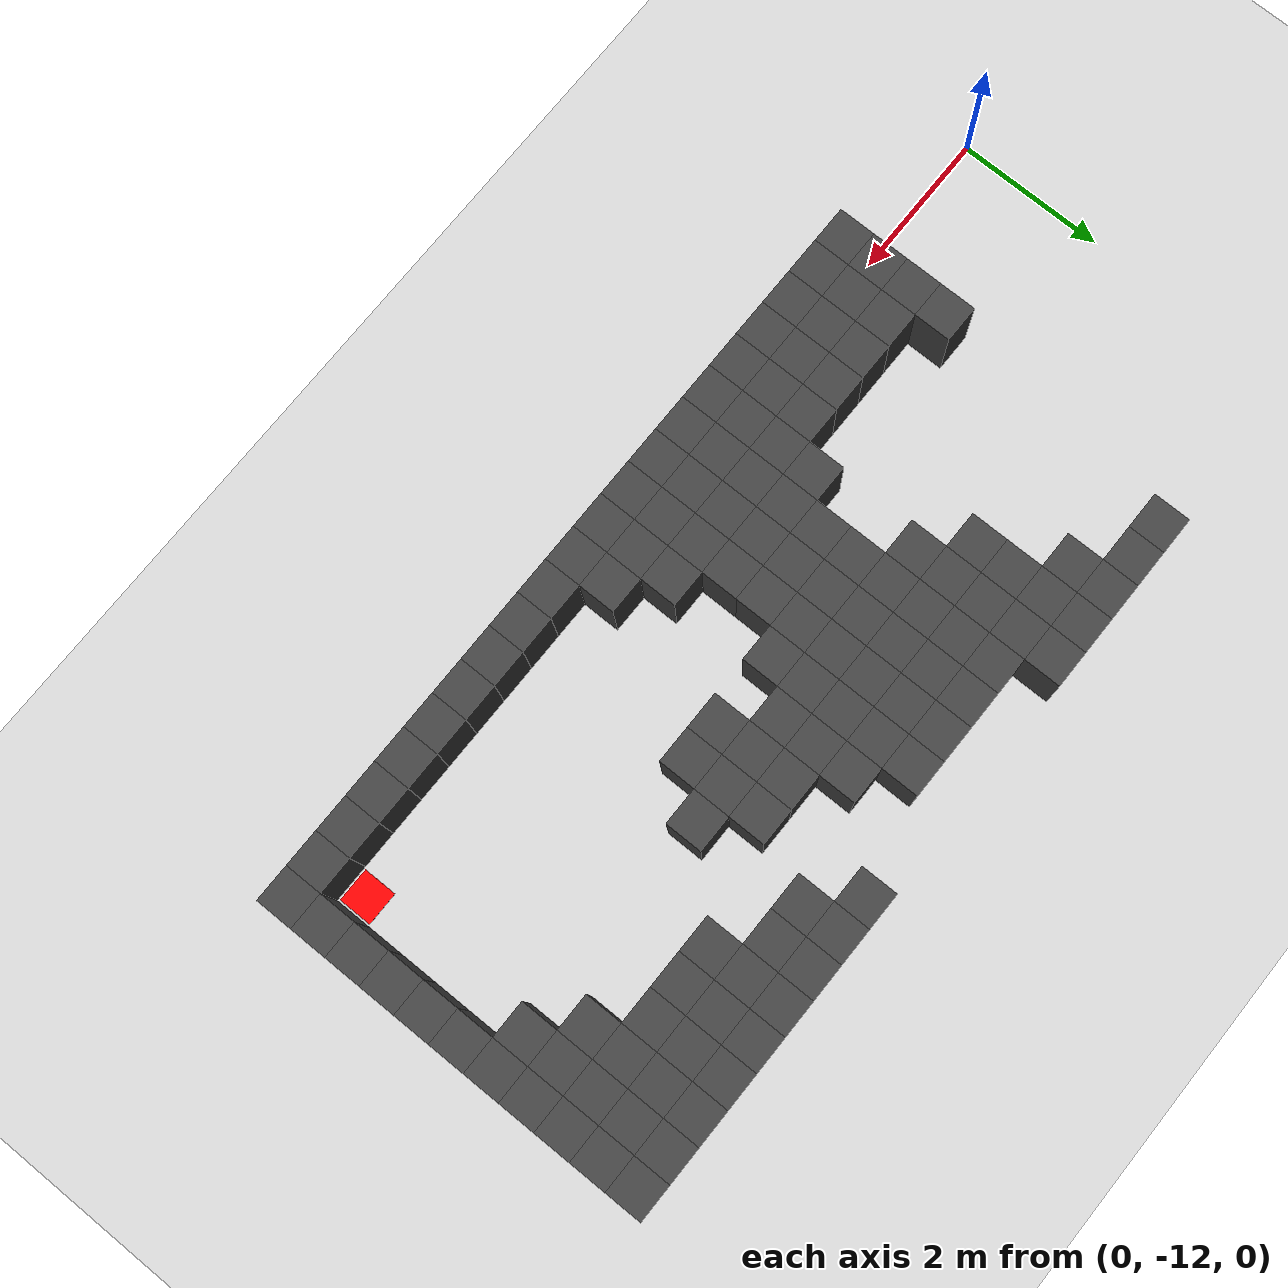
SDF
<sdf version="1.7">
 <world name="map_8843">
  <model name="ground_plane">
   <static>true</static>
   <link name="link">
    <collision name="collision">
     <geometry><plane><normal>0 0 1</normal><size>200 200</size></plane></geometry>
    </collision>
    <visual name="visual">
     <geometry><plane><normal>0 0 1</normal><size>200 200</size></plane></geometry>
     <material><ambient>0.8 0.8 0.8 1</ambient><diffuse>0.8 0.8 0.8 1</diffuse></material>
    </visual>
   </link>
  </model>
  <model name="maze_environment">
   <static>true</static>
   <link name="wall_763">
    <pose>2.750 -7.250 0.500 0 0 0</pose>
    <collision name="col"><geometry><box><size>0.5 0.5 1.0</size></box></geometry></collision>
    <visual name="vis">
     <geometry><box><size>0.5 0.5 1.0</size></box></geometry>
     <material><ambient>0.15 0.15 0.15 1</ambient><diffuse>0.25 0.25 0.25 1</diffuse></material>
    </visual>
   </link>
   <link name="wall_764">
    <pose>3.250 -7.250 0.500 0 0 0</pose>
    <collision name="col"><geometry><box><size>0.5 0.5 1.0</size></box></geometry></collision>
    <visual name="vis">
     <geometry><box><size>0.5 0.5 1.0</size></box></geometry>
     <material><ambient>0.15 0.15 0.15 1</ambient><diffuse>0.25 0.25 0.25 1</diffuse></material>
    </visual>
   </link>
   <link name="wall_765">
    <pose>3.750 -7.250 0.500 0 0 0</pose>
    <collision name="col"><geometry><box><size>0.5 0.5 1.0</size></box></geometry></collision>
    <visual name="vis">
     <geometry><box><size>0.5 0.5 1.0</size></box></geometry>
     <material><ambient>0.15 0.15 0.15 1</ambient><diffuse>0.25 0.25 0.25 1</diffuse></material>
    </visual>
   </link>
   <link name="wall_766">
    <pose>4.250 -7.250 0.500 0 0 0</pose>
    <collision name="col"><geometry><box><size>0.5 0.5 1.0</size></box></geometry></collision>
    <visual name="vis">
     <geometry><box><size>0.5 0.5 1.0</size></box></geometry>
     <material><ambient>0.15 0.15 0.15 1</ambient><diffuse>0.25 0.25 0.25 1</diffuse></material>
    </visual>
   </link>
   <link name="wall_767">
    <pose>4.750 -7.250 0.500 0 0 0</pose>
    <collision name="col"><geometry><box><size>0.5 0.5 1.0</size></box></geometry></collision>
    <visual name="vis">
     <geometry><box><size>0.5 0.5 1.0</size></box></geometry>
     <material><ambient>0.15 0.15 0.15 1</ambient><diffuse>0.25 0.25 0.25 1</diffuse></material>
    </visual>
   </link>
   <link name="wall_768">
    <pose>8.250 -7.250 0.500 0 0 0</pose>
    <collision name="col"><geometry><box><size>0.5 0.5 1.0</size></box></geometry></collision>
    <visual name="vis">
     <geometry><box><size>0.5 0.5 1.0</size></box></geometry>
     <material><ambient>0.15 0.15 0.15 1</ambient><diffuse>0.25 0.25 0.25 1</diffuse></material>
    </visual>
   </link>
   <link name="wall_769">
    <pose>8.750 -7.250 0.500 0 0 0</pose>
    <collision name="col"><geometry><box><size>0.5 0.5 1.0</size></box></geometry></collision>
    <visual name="vis">
     <geometry><box><size>0.5 0.5 1.0</size></box></geometry>
     <material><ambient>0.15 0.15 0.15 1</ambient><diffuse>0.25 0.25 0.25 1</diffuse></material>
    </visual>
   </link>
   <link name="wall_770">
    <pose>9.250 -7.250 0.500 0 0 0</pose>
    <collision name="col"><geometry><box><size>0.5 0.5 1.0</size></box></geometry></collision>
    <visual name="vis">
     <geometry><box><size>0.5 0.5 1.0</size></box></geometry>
     <material><ambient>0.15 0.15 0.15 1</ambient><diffuse>0.25 0.25 0.25 1</diffuse></material>
    </visual>
   </link>
   <link name="wall_771">
    <pose>9.750 -7.250 0.500 0 0 0</pose>
    <collision name="col"><geometry><box><size>0.5 0.5 1.0</size></box></geometry></collision>
    <visual name="vis">
     <geometry><box><size>0.5 0.5 1.0</size></box></geometry>
     <material><ambient>0.15 0.15 0.15 1</ambient><diffuse>0.25 0.25 0.25 1</diffuse></material>
    </visual>
   </link>
   <link name="wall_772">
    <pose>10.250 -7.250 0.500 0 0 0</pose>
    <collision name="col"><geometry><box><size>0.5 0.5 1.0</size></box></geometry></collision>
    <visual name="vis">
     <geometry><box><size>0.5 0.5 1.0</size></box></geometry>
     <material><ambient>0.15 0.15 0.15 1</ambient><diffuse>0.25 0.25 0.25 1</diffuse></material>
    </visual>
   </link>
   <link name="wall_773">
    <pose>10.750 -7.250 0.500 0 0 0</pose>
    <collision name="col"><geometry><box><size>0.5 0.5 1.0</size></box></geometry></collision>
    <visual name="vis">
     <geometry><box><size>0.5 0.5 1.0</size></box></geometry>
     <material><ambient>0.15 0.15 0.15 1</ambient><diffuse>0.25 0.25 0.25 1</diffuse></material>
    </visual>
   </link>
   <link name="wall_774">
    <pose>11.250 -7.250 0.500 0 0 0</pose>
    <collision name="col"><geometry><box><size>0.5 0.5 1.0</size></box></geometry></collision>
    <visual name="vis">
     <geometry><box><size>0.5 0.5 1.0</size></box></geometry>
     <material><ambient>0.15 0.15 0.15 1</ambient><diffuse>0.25 0.25 0.25 1</diffuse></material>
    </visual>
   </link>
   <link name="wall_775">
    <pose>11.750 -7.250 0.500 0 0 0</pose>
    <collision name="col"><geometry><box><size>0.5 0.5 1.0</size></box></geometry></collision>
    <visual name="vis">
     <geometry><box><size>0.5 0.5 1.0</size></box></geometry>
     <material><ambient>0.15 0.15 0.15 1</ambient><diffuse>0.25 0.25 0.25 1</diffuse></material>
    </visual>
   </link>
   <link name="wall_776">
    <pose>12.250 -7.250 0.500 0 0 0</pose>
    <collision name="col"><geometry><box><size>0.5 0.5 1.0</size></box></geometry></collision>
    <visual name="vis">
     <geometry><box><size>0.5 0.5 1.0</size></box></geometry>
     <material><ambient>0.15 0.15 0.15 1</ambient><diffuse>0.25 0.25 0.25 1</diffuse></material>
    </visual>
   </link>
   <link name="wall_786">
    <pose>3.750 -7.750 0.500 0 0 0</pose>
    <collision name="col"><geometry><box><size>0.5 0.5 1.0</size></box></geometry></collision>
    <visual name="vis">
     <geometry><box><size>0.5 0.5 1.0</size></box></geometry>
     <material><ambient>0.15 0.15 0.15 1</ambient><diffuse>0.25 0.25 0.25 1</diffuse></material>
    </visual>
   </link>
   <link name="wall_787">
    <pose>4.250 -7.750 0.500 0 0 0</pose>
    <collision name="col"><geometry><box><size>0.5 0.5 1.0</size></box></geometry></collision>
    <visual name="vis">
     <geometry><box><size>0.5 0.5 1.0</size></box></geometry>
     <material><ambient>0.15 0.15 0.15 1</ambient><diffuse>0.25 0.25 0.25 1</diffuse></material>
    </visual>
   </link>
   <link name="wall_788">
    <pose>4.750 -7.750 0.500 0 0 0</pose>
    <collision name="col"><geometry><box><size>0.5 0.5 1.0</size></box></geometry></collision>
    <visual name="vis">
     <geometry><box><size>0.5 0.5 1.0</size></box></geometry>
     <material><ambient>0.15 0.15 0.15 1</ambient><diffuse>0.25 0.25 0.25 1</diffuse></material>
    </visual>
   </link>
   <link name="wall_789">
    <pose>5.250 -7.750 0.500 0 0 0</pose>
    <collision name="col"><geometry><box><size>0.5 0.5 1.0</size></box></geometry></collision>
    <visual name="vis">
     <geometry><box><size>0.5 0.5 1.0</size></box></geometry>
     <material><ambient>0.15 0.15 0.15 1</ambient><diffuse>0.25 0.25 0.25 1</diffuse></material>
    </visual>
   </link>
   <link name="wall_790">
    <pose>5.750 -7.750 0.500 0 0 0</pose>
    <collision name="col"><geometry><box><size>0.5 0.5 1.0</size></box></geometry></collision>
    <visual name="vis">
     <geometry><box><size>0.5 0.5 1.0</size></box></geometry>
     <material><ambient>0.15 0.15 0.15 1</ambient><diffuse>0.25 0.25 0.25 1</diffuse></material>
    </visual>
   </link>
   <link name="wall_791">
    <pose>6.250 -7.750 0.500 0 0 0</pose>
    <collision name="col"><geometry><box><size>0.5 0.5 1.0</size></box></geometry></collision>
    <visual name="vis">
     <geometry><box><size>0.5 0.5 1.0</size></box></geometry>
     <material><ambient>0.15 0.15 0.15 1</ambient><diffuse>0.25 0.25 0.25 1</diffuse></material>
    </visual>
   </link>
   <link name="wall_792">
    <pose>6.750 -7.750 0.500 0 0 0</pose>
    <collision name="col"><geometry><box><size>0.5 0.5 1.0</size></box></geometry></collision>
    <visual name="vis">
     <geometry><box><size>0.5 0.5 1.0</size></box></geometry>
     <material><ambient>0.15 0.15 0.15 1</ambient><diffuse>0.25 0.25 0.25 1</diffuse></material>
    </visual>
   </link>
   <link name="wall_793">
    <pose>8.750 -7.750 0.500 0 0 0</pose>
    <collision name="col"><geometry><box><size>0.5 0.5 1.0</size></box></geometry></collision>
    <visual name="vis">
     <geometry><box><size>0.5 0.5 1.0</size></box></geometry>
     <material><ambient>0.15 0.15 0.15 1</ambient><diffuse>0.25 0.25 0.25 1</diffuse></material>
    </visual>
   </link>
   <link name="wall_794">
    <pose>9.250 -7.750 0.500 0 0 0</pose>
    <collision name="col"><geometry><box><size>0.5 0.5 1.0</size></box></geometry></collision>
    <visual name="vis">
     <geometry><box><size>0.5 0.5 1.0</size></box></geometry>
     <material><ambient>0.15 0.15 0.15 1</ambient><diffuse>0.25 0.25 0.25 1</diffuse></material>
    </visual>
   </link>
   <link name="wall_795">
    <pose>9.750 -7.750 0.500 0 0 0</pose>
    <collision name="col"><geometry><box><size>0.5 0.5 1.0</size></box></geometry></collision>
    <visual name="vis">
     <geometry><box><size>0.5 0.5 1.0</size></box></geometry>
     <material><ambient>0.15 0.15 0.15 1</ambient><diffuse>0.25 0.25 0.25 1</diffuse></material>
    </visual>
   </link>
   <link name="wall_796">
    <pose>10.250 -7.750 0.500 0 0 0</pose>
    <collision name="col"><geometry><box><size>0.5 0.5 1.0</size></box></geometry></collision>
    <visual name="vis">
     <geometry><box><size>0.5 0.5 1.0</size></box></geometry>
     <material><ambient>0.15 0.15 0.15 1</ambient><diffuse>0.25 0.25 0.25 1</diffuse></material>
    </visual>
   </link>
   <link name="wall_797">
    <pose>10.750 -7.750 0.500 0 0 0</pose>
    <collision name="col"><geometry><box><size>0.5 0.5 1.0</size></box></geometry></collision>
    <visual name="vis">
     <geometry><box><size>0.5 0.5 1.0</size></box></geometry>
     <material><ambient>0.15 0.15 0.15 1</ambient><diffuse>0.25 0.25 0.25 1</diffuse></material>
    </visual>
   </link>
   <link name="wall_798">
    <pose>11.250 -7.750 0.500 0 0 0</pose>
    <collision name="col"><geometry><box><size>0.5 0.5 1.0</size></box></geometry></collision>
    <visual name="vis">
     <geometry><box><size>0.5 0.5 1.0</size></box></geometry>
     <material><ambient>0.15 0.15 0.15 1</ambient><diffuse>0.25 0.25 0.25 1</diffuse></material>
    </visual>
   </link>
   <link name="wall_799">
    <pose>11.750 -7.750 0.500 0 0 0</pose>
    <collision name="col"><geometry><box><size>0.5 0.5 1.0</size></box></geometry></collision>
    <visual name="vis">
     <geometry><box><size>0.5 0.5 1.0</size></box></geometry>
     <material><ambient>0.15 0.15 0.15 1</ambient><diffuse>0.25 0.25 0.25 1</diffuse></material>
    </visual>
   </link>
   <link name="wall_800">
    <pose>12.250 -7.750 0.500 0 0 0</pose>
    <collision name="col"><geometry><box><size>0.5 0.5 1.0</size></box></geometry></collision>
    <visual name="vis">
     <geometry><box><size>0.5 0.5 1.0</size></box></geometry>
     <material><ambient>0.15 0.15 0.15 1</ambient><diffuse>0.25 0.25 0.25 1</diffuse></material>
    </visual>
   </link>
   <link name="wall_810">
    <pose>4.250 -8.250 0.500 0 0 0</pose>
    <collision name="col"><geometry><box><size>0.5 0.5 1.0</size></box></geometry></collision>
    <visual name="vis">
     <geometry><box><size>0.5 0.5 1.0</size></box></geometry>
     <material><ambient>0.15 0.15 0.15 1</ambient><diffuse>0.25 0.25 0.25 1</diffuse></material>
    </visual>
   </link>
   <link name="wall_811">
    <pose>4.750 -8.250 0.500 0 0 0</pose>
    <collision name="col"><geometry><box><size>0.5 0.5 1.0</size></box></geometry></collision>
    <visual name="vis">
     <geometry><box><size>0.5 0.5 1.0</size></box></geometry>
     <material><ambient>0.15 0.15 0.15 1</ambient><diffuse>0.25 0.25 0.25 1</diffuse></material>
    </visual>
   </link>
   <link name="wall_812">
    <pose>5.250 -8.250 0.500 0 0 0</pose>
    <collision name="col"><geometry><box><size>0.5 0.5 1.0</size></box></geometry></collision>
    <visual name="vis">
     <geometry><box><size>0.5 0.5 1.0</size></box></geometry>
     <material><ambient>0.15 0.15 0.15 1</ambient><diffuse>0.25 0.25 0.25 1</diffuse></material>
    </visual>
   </link>
   <link name="wall_813">
    <pose>5.750 -8.250 0.500 0 0 0</pose>
    <collision name="col"><geometry><box><size>0.5 0.5 1.0</size></box></geometry></collision>
    <visual name="vis">
     <geometry><box><size>0.5 0.5 1.0</size></box></geometry>
     <material><ambient>0.15 0.15 0.15 1</ambient><diffuse>0.25 0.25 0.25 1</diffuse></material>
    </visual>
   </link>
   <link name="wall_814">
    <pose>6.250 -8.250 0.500 0 0 0</pose>
    <collision name="col"><geometry><box><size>0.5 0.5 1.0</size></box></geometry></collision>
    <visual name="vis">
     <geometry><box><size>0.5 0.5 1.0</size></box></geometry>
     <material><ambient>0.15 0.15 0.15 1</ambient><diffuse>0.25 0.25 0.25 1</diffuse></material>
    </visual>
   </link>
   <link name="wall_815">
    <pose>6.750 -8.250 0.500 0 0 0</pose>
    <collision name="col"><geometry><box><size>0.5 0.5 1.0</size></box></geometry></collision>
    <visual name="vis">
     <geometry><box><size>0.5 0.5 1.0</size></box></geometry>
     <material><ambient>0.15 0.15 0.15 1</ambient><diffuse>0.25 0.25 0.25 1</diffuse></material>
    </visual>
   </link>
   <link name="wall_816">
    <pose>7.250 -8.250 0.500 0 0 0</pose>
    <collision name="col"><geometry><box><size>0.5 0.5 1.0</size></box></geometry></collision>
    <visual name="vis">
     <geometry><box><size>0.5 0.5 1.0</size></box></geometry>
     <material><ambient>0.15 0.15 0.15 1</ambient><diffuse>0.25 0.25 0.25 1</diffuse></material>
    </visual>
   </link>
   <link name="wall_817">
    <pose>9.750 -8.250 0.500 0 0 0</pose>
    <collision name="col"><geometry><box><size>0.5 0.5 1.0</size></box></geometry></collision>
    <visual name="vis">
     <geometry><box><size>0.5 0.5 1.0</size></box></geometry>
     <material><ambient>0.15 0.15 0.15 1</ambient><diffuse>0.25 0.25 0.25 1</diffuse></material>
    </visual>
   </link>
   <link name="wall_818">
    <pose>10.250 -8.250 0.500 0 0 0</pose>
    <collision name="col"><geometry><box><size>0.5 0.5 1.0</size></box></geometry></collision>
    <visual name="vis">
     <geometry><box><size>0.5 0.5 1.0</size></box></geometry>
     <material><ambient>0.15 0.15 0.15 1</ambient><diffuse>0.25 0.25 0.25 1</diffuse></material>
    </visual>
   </link>
   <link name="wall_819">
    <pose>10.750 -8.250 0.500 0 0 0</pose>
    <collision name="col"><geometry><box><size>0.5 0.5 1.0</size></box></geometry></collision>
    <visual name="vis">
     <geometry><box><size>0.5 0.5 1.0</size></box></geometry>
     <material><ambient>0.15 0.15 0.15 1</ambient><diffuse>0.25 0.25 0.25 1</diffuse></material>
    </visual>
   </link>
   <link name="wall_820">
    <pose>11.250 -8.250 0.500 0 0 0</pose>
    <collision name="col"><geometry><box><size>0.5 0.5 1.0</size></box></geometry></collision>
    <visual name="vis">
     <geometry><box><size>0.5 0.5 1.0</size></box></geometry>
     <material><ambient>0.15 0.15 0.15 1</ambient><diffuse>0.25 0.25 0.25 1</diffuse></material>
    </visual>
   </link>
   <link name="wall_821">
    <pose>11.750 -8.250 0.500 0 0 0</pose>
    <collision name="col"><geometry><box><size>0.5 0.5 1.0</size></box></geometry></collision>
    <visual name="vis">
     <geometry><box><size>0.5 0.5 1.0</size></box></geometry>
     <material><ambient>0.15 0.15 0.15 1</ambient><diffuse>0.25 0.25 0.25 1</diffuse></material>
    </visual>
   </link>
   <link name="wall_822">
    <pose>12.250 -8.250 0.500 0 0 0</pose>
    <collision name="col"><geometry><box><size>0.5 0.5 1.0</size></box></geometry></collision>
    <visual name="vis">
     <geometry><box><size>0.5 0.5 1.0</size></box></geometry>
     <material><ambient>0.15 0.15 0.15 1</ambient><diffuse>0.25 0.25 0.25 1</diffuse></material>
    </visual>
   </link>
   <link name="wall_832">
    <pose>4.250 -8.750 0.500 0 0 0</pose>
    <collision name="col"><geometry><box><size>0.5 0.5 1.0</size></box></geometry></collision>
    <visual name="vis">
     <geometry><box><size>0.5 0.5 1.0</size></box></geometry>
     <material><ambient>0.15 0.15 0.15 1</ambient><diffuse>0.25 0.25 0.25 1</diffuse></material>
    </visual>
   </link>
   <link name="wall_833">
    <pose>4.750 -8.750 0.500 0 0 0</pose>
    <collision name="col"><geometry><box><size>0.5 0.5 1.0</size></box></geometry></collision>
    <visual name="vis">
     <geometry><box><size>0.5 0.5 1.0</size></box></geometry>
     <material><ambient>0.15 0.15 0.15 1</ambient><diffuse>0.25 0.25 0.25 1</diffuse></material>
    </visual>
   </link>
   <link name="wall_834">
    <pose>5.250 -8.750 0.500 0 0 0</pose>
    <collision name="col"><geometry><box><size>0.5 0.5 1.0</size></box></geometry></collision>
    <visual name="vis">
     <geometry><box><size>0.5 0.5 1.0</size></box></geometry>
     <material><ambient>0.15 0.15 0.15 1</ambient><diffuse>0.25 0.25 0.25 1</diffuse></material>
    </visual>
   </link>
   <link name="wall_835">
    <pose>5.750 -8.750 0.500 0 0 0</pose>
    <collision name="col"><geometry><box><size>0.5 0.5 1.0</size></box></geometry></collision>
    <visual name="vis">
     <geometry><box><size>0.5 0.5 1.0</size></box></geometry>
     <material><ambient>0.15 0.15 0.15 1</ambient><diffuse>0.25 0.25 0.25 1</diffuse></material>
    </visual>
   </link>
   <link name="wall_836">
    <pose>6.250 -8.750 0.500 0 0 0</pose>
    <collision name="col"><geometry><box><size>0.5 0.5 1.0</size></box></geometry></collision>
    <visual name="vis">
     <geometry><box><size>0.5 0.5 1.0</size></box></geometry>
     <material><ambient>0.15 0.15 0.15 1</ambient><diffuse>0.25 0.25 0.25 1</diffuse></material>
    </visual>
   </link>
   <link name="wall_837">
    <pose>6.750 -8.750 0.500 0 0 0</pose>
    <collision name="col"><geometry><box><size>0.5 0.5 1.0</size></box></geometry></collision>
    <visual name="vis">
     <geometry><box><size>0.5 0.5 1.0</size></box></geometry>
     <material><ambient>0.15 0.15 0.15 1</ambient><diffuse>0.25 0.25 0.25 1</diffuse></material>
    </visual>
   </link>
   <link name="wall_838">
    <pose>7.250 -8.750 0.500 0 0 0</pose>
    <collision name="col"><geometry><box><size>0.5 0.5 1.0</size></box></geometry></collision>
    <visual name="vis">
     <geometry><box><size>0.5 0.5 1.0</size></box></geometry>
     <material><ambient>0.15 0.15 0.15 1</ambient><diffuse>0.25 0.25 0.25 1</diffuse></material>
    </visual>
   </link>
   <link name="wall_839">
    <pose>7.750 -8.750 0.500 0 0 0</pose>
    <collision name="col"><geometry><box><size>0.5 0.5 1.0</size></box></geometry></collision>
    <visual name="vis">
     <geometry><box><size>0.5 0.5 1.0</size></box></geometry>
     <material><ambient>0.15 0.15 0.15 1</ambient><diffuse>0.25 0.25 0.25 1</diffuse></material>
    </visual>
   </link>
   <link name="wall_840">
    <pose>8.250 -8.750 0.500 0 0 0</pose>
    <collision name="col"><geometry><box><size>0.5 0.5 1.0</size></box></geometry></collision>
    <visual name="vis">
     <geometry><box><size>0.5 0.5 1.0</size></box></geometry>
     <material><ambient>0.15 0.15 0.15 1</ambient><diffuse>0.25 0.25 0.25 1</diffuse></material>
    </visual>
   </link>
   <link name="wall_841">
    <pose>11.250 -8.750 0.500 0 0 0</pose>
    <collision name="col"><geometry><box><size>0.5 0.5 1.0</size></box></geometry></collision>
    <visual name="vis">
     <geometry><box><size>0.5 0.5 1.0</size></box></geometry>
     <material><ambient>0.15 0.15 0.15 1</ambient><diffuse>0.25 0.25 0.25 1</diffuse></material>
    </visual>
   </link>
   <link name="wall_842">
    <pose>11.750 -8.750 0.500 0 0 0</pose>
    <collision name="col"><geometry><box><size>0.5 0.5 1.0</size></box></geometry></collision>
    <visual name="vis">
     <geometry><box><size>0.5 0.5 1.0</size></box></geometry>
     <material><ambient>0.15 0.15 0.15 1</ambient><diffuse>0.25 0.25 0.25 1</diffuse></material>
    </visual>
   </link>
   <link name="wall_843">
    <pose>12.250 -8.750 0.500 0 0 0</pose>
    <collision name="col"><geometry><box><size>0.5 0.5 1.0</size></box></geometry></collision>
    <visual name="vis">
     <geometry><box><size>0.5 0.5 1.0</size></box></geometry>
     <material><ambient>0.15 0.15 0.15 1</ambient><diffuse>0.25 0.25 0.25 1</diffuse></material>
    </visual>
   </link>
   <link name="wall_857">
    <pose>4.750 -9.250 0.500 0 0 0</pose>
    <collision name="col"><geometry><box><size>0.5 0.5 1.0</size></box></geometry></collision>
    <visual name="vis">
     <geometry><box><size>0.5 0.5 1.0</size></box></geometry>
     <material><ambient>0.15 0.15 0.15 1</ambient><diffuse>0.25 0.25 0.25 1</diffuse></material>
    </visual>
   </link>
   <link name="wall_858">
    <pose>5.250 -9.250 0.500 0 0 0</pose>
    <collision name="col"><geometry><box><size>0.5 0.5 1.0</size></box></geometry></collision>
    <visual name="vis">
     <geometry><box><size>0.5 0.5 1.0</size></box></geometry>
     <material><ambient>0.15 0.15 0.15 1</ambient><diffuse>0.25 0.25 0.25 1</diffuse></material>
    </visual>
   </link>
   <link name="wall_859">
    <pose>5.750 -9.250 0.500 0 0 0</pose>
    <collision name="col"><geometry><box><size>0.5 0.5 1.0</size></box></geometry></collision>
    <visual name="vis">
     <geometry><box><size>0.5 0.5 1.0</size></box></geometry>
     <material><ambient>0.15 0.15 0.15 1</ambient><diffuse>0.25 0.25 0.25 1</diffuse></material>
    </visual>
   </link>
   <link name="wall_860">
    <pose>6.250 -9.250 0.500 0 0 0</pose>
    <collision name="col"><geometry><box><size>0.5 0.5 1.0</size></box></geometry></collision>
    <visual name="vis">
     <geometry><box><size>0.5 0.5 1.0</size></box></geometry>
     <material><ambient>0.15 0.15 0.15 1</ambient><diffuse>0.25 0.25 0.25 1</diffuse></material>
    </visual>
   </link>
   <link name="wall_861">
    <pose>6.750 -9.250 0.500 0 0 0</pose>
    <collision name="col"><geometry><box><size>0.5 0.5 1.0</size></box></geometry></collision>
    <visual name="vis">
     <geometry><box><size>0.5 0.5 1.0</size></box></geometry>
     <material><ambient>0.15 0.15 0.15 1</ambient><diffuse>0.25 0.25 0.25 1</diffuse></material>
    </visual>
   </link>
   <link name="wall_862">
    <pose>7.250 -9.250 0.500 0 0 0</pose>
    <collision name="col"><geometry><box><size>0.5 0.5 1.0</size></box></geometry></collision>
    <visual name="vis">
     <geometry><box><size>0.5 0.5 1.0</size></box></geometry>
     <material><ambient>0.15 0.15 0.15 1</ambient><diffuse>0.25 0.25 0.25 1</diffuse></material>
    </visual>
   </link>
   <link name="wall_863">
    <pose>7.750 -9.250 0.500 0 0 0</pose>
    <collision name="col"><geometry><box><size>0.5 0.5 1.0</size></box></geometry></collision>
    <visual name="vis">
     <geometry><box><size>0.5 0.5 1.0</size></box></geometry>
     <material><ambient>0.15 0.15 0.15 1</ambient><diffuse>0.25 0.25 0.25 1</diffuse></material>
    </visual>
   </link>
   <link name="wall_864">
    <pose>8.250 -9.250 0.500 0 0 0</pose>
    <collision name="col"><geometry><box><size>0.5 0.5 1.0</size></box></geometry></collision>
    <visual name="vis">
     <geometry><box><size>0.5 0.5 1.0</size></box></geometry>
     <material><ambient>0.15 0.15 0.15 1</ambient><diffuse>0.25 0.25 0.25 1</diffuse></material>
    </visual>
   </link>
   <link name="wall_865">
    <pose>8.750 -9.250 0.500 0 0 0</pose>
    <collision name="col"><geometry><box><size>0.5 0.5 1.0</size></box></geometry></collision>
    <visual name="vis">
     <geometry><box><size>0.5 0.5 1.0</size></box></geometry>
     <material><ambient>0.15 0.15 0.15 1</ambient><diffuse>0.25 0.25 0.25 1</diffuse></material>
    </visual>
   </link>
   <link name="wall_866">
    <pose>11.750 -9.250 0.500 0 0 0</pose>
    <collision name="col"><geometry><box><size>0.5 0.5 1.0</size></box></geometry></collision>
    <visual name="vis">
     <geometry><box><size>0.5 0.5 1.0</size></box></geometry>
     <material><ambient>0.15 0.15 0.15 1</ambient><diffuse>0.25 0.25 0.25 1</diffuse></material>
    </visual>
   </link>
   <link name="wall_867">
    <pose>12.250 -9.250 0.500 0 0 0</pose>
    <collision name="col"><geometry><box><size>0.5 0.5 1.0</size></box></geometry></collision>
    <visual name="vis">
     <geometry><box><size>0.5 0.5 1.0</size></box></geometry>
     <material><ambient>0.15 0.15 0.15 1</ambient><diffuse>0.25 0.25 0.25 1</diffuse></material>
    </visual>
   </link>
   <link name="wall_879">
    <pose>5.250 -9.750 0.500 0 0 0</pose>
    <collision name="col"><geometry><box><size>0.5 0.5 1.0</size></box></geometry></collision>
    <visual name="vis">
     <geometry><box><size>0.5 0.5 1.0</size></box></geometry>
     <material><ambient>0.15 0.15 0.15 1</ambient><diffuse>0.25 0.25 0.25 1</diffuse></material>
    </visual>
   </link>
   <link name="wall_880">
    <pose>5.750 -9.750 0.500 0 0 0</pose>
    <collision name="col"><geometry><box><size>0.5 0.5 1.0</size></box></geometry></collision>
    <visual name="vis">
     <geometry><box><size>0.5 0.5 1.0</size></box></geometry>
     <material><ambient>0.15 0.15 0.15 1</ambient><diffuse>0.25 0.25 0.25 1</diffuse></material>
    </visual>
   </link>
   <link name="wall_881">
    <pose>6.250 -9.750 0.500 0 0 0</pose>
    <collision name="col"><geometry><box><size>0.5 0.5 1.0</size></box></geometry></collision>
    <visual name="vis">
     <geometry><box><size>0.5 0.5 1.0</size></box></geometry>
     <material><ambient>0.15 0.15 0.15 1</ambient><diffuse>0.25 0.25 0.25 1</diffuse></material>
    </visual>
   </link>
   <link name="wall_882">
    <pose>6.750 -9.750 0.500 0 0 0</pose>
    <collision name="col"><geometry><box><size>0.5 0.5 1.0</size></box></geometry></collision>
    <visual name="vis">
     <geometry><box><size>0.5 0.5 1.0</size></box></geometry>
     <material><ambient>0.15 0.15 0.15 1</ambient><diffuse>0.25 0.25 0.25 1</diffuse></material>
    </visual>
   </link>
   <link name="wall_883">
    <pose>7.750 -9.750 0.500 0 0 0</pose>
    <collision name="col"><geometry><box><size>0.5 0.5 1.0</size></box></geometry></collision>
    <visual name="vis">
     <geometry><box><size>0.5 0.5 1.0</size></box></geometry>
     <material><ambient>0.15 0.15 0.15 1</ambient><diffuse>0.25 0.25 0.25 1</diffuse></material>
    </visual>
   </link>
   <link name="wall_884">
    <pose>8.250 -9.750 0.500 0 0 0</pose>
    <collision name="col"><geometry><box><size>0.5 0.5 1.0</size></box></geometry></collision>
    <visual name="vis">
     <geometry><box><size>0.5 0.5 1.0</size></box></geometry>
     <material><ambient>0.15 0.15 0.15 1</ambient><diffuse>0.25 0.25 0.25 1</diffuse></material>
    </visual>
   </link>
   <link name="wall_885">
    <pose>12.250 -9.750 0.500 0 0 0</pose>
    <collision name="col"><geometry><box><size>0.5 0.5 1.0</size></box></geometry></collision>
    <visual name="vis">
     <geometry><box><size>0.5 0.5 1.0</size></box></geometry>
     <material><ambient>0.15 0.15 0.15 1</ambient><diffuse>0.25 0.25 0.25 1</diffuse></material>
    </visual>
   </link>
   <link name="wall_896">
    <pose>5.250 -10.250 0.500 0 0 0</pose>
    <collision name="col"><geometry><box><size>0.5 0.5 1.0</size></box></geometry></collision>
    <visual name="vis">
     <geometry><box><size>0.5 0.5 1.0</size></box></geometry>
     <material><ambient>0.15 0.15 0.15 1</ambient><diffuse>0.25 0.25 0.25 1</diffuse></material>
    </visual>
   </link>
   <link name="wall_897">
    <pose>5.750 -10.250 0.500 0 0 0</pose>
    <collision name="col"><geometry><box><size>0.5 0.5 1.0</size></box></geometry></collision>
    <visual name="vis">
     <geometry><box><size>0.5 0.5 1.0</size></box></geometry>
     <material><ambient>0.15 0.15 0.15 1</ambient><diffuse>0.25 0.25 0.25 1</diffuse></material>
    </visual>
   </link>
   <link name="wall_898">
    <pose>6.250 -10.250 0.500 0 0 0</pose>
    <collision name="col"><geometry><box><size>0.5 0.5 1.0</size></box></geometry></collision>
    <visual name="vis">
     <geometry><box><size>0.5 0.5 1.0</size></box></geometry>
     <material><ambient>0.15 0.15 0.15 1</ambient><diffuse>0.25 0.25 0.25 1</diffuse></material>
    </visual>
   </link>
   <link name="wall_899">
    <pose>12.250 -10.250 0.500 0 0 0</pose>
    <collision name="col"><geometry><box><size>0.5 0.5 1.0</size></box></geometry></collision>
    <visual name="vis">
     <geometry><box><size>0.5 0.5 1.0</size></box></geometry>
     <material><ambient>0.15 0.15 0.15 1</ambient><diffuse>0.25 0.25 0.25 1</diffuse></material>
    </visual>
   </link>
   <link name="wall_911">
    <pose>2.250 -10.750 0.500 0 0 0</pose>
    <collision name="col"><geometry><box><size>0.5 0.5 1.0</size></box></geometry></collision>
    <visual name="vis">
     <geometry><box><size>0.5 0.5 1.0</size></box></geometry>
     <material><ambient>0.15 0.15 0.15 1</ambient><diffuse>0.25 0.25 0.25 1</diffuse></material>
    </visual>
   </link>
   <link name="wall_912">
    <pose>4.750 -10.750 0.500 0 0 0</pose>
    <collision name="col"><geometry><box><size>0.5 0.5 1.0</size></box></geometry></collision>
    <visual name="vis">
     <geometry><box><size>0.5 0.5 1.0</size></box></geometry>
     <material><ambient>0.15 0.15 0.15 1</ambient><diffuse>0.25 0.25 0.25 1</diffuse></material>
    </visual>
   </link>
   <link name="wall_913">
    <pose>5.250 -10.750 0.500 0 0 0</pose>
    <collision name="col"><geometry><box><size>0.5 0.5 1.0</size></box></geometry></collision>
    <visual name="vis">
     <geometry><box><size>0.5 0.5 1.0</size></box></geometry>
     <material><ambient>0.15 0.15 0.15 1</ambient><diffuse>0.25 0.25 0.25 1</diffuse></material>
    </visual>
   </link>
   <link name="wall_914">
    <pose>5.750 -10.750 0.500 0 0 0</pose>
    <collision name="col"><geometry><box><size>0.5 0.5 1.0</size></box></geometry></collision>
    <visual name="vis">
     <geometry><box><size>0.5 0.5 1.0</size></box></geometry>
     <material><ambient>0.15 0.15 0.15 1</ambient><diffuse>0.25 0.25 0.25 1</diffuse></material>
    </visual>
   </link>
   <link name="wall_915">
    <pose>6.250 -10.750 0.500 0 0 0</pose>
    <collision name="col"><geometry><box><size>0.5 0.5 1.0</size></box></geometry></collision>
    <visual name="vis">
     <geometry><box><size>0.5 0.5 1.0</size></box></geometry>
     <material><ambient>0.15 0.15 0.15 1</ambient><diffuse>0.25 0.25 0.25 1</diffuse></material>
    </visual>
   </link>
   <link name="wall_916">
    <pose>12.250 -10.750 0.500 0 0 0</pose>
    <collision name="col"><geometry><box><size>0.5 0.5 1.0</size></box></geometry></collision>
    <visual name="vis">
     <geometry><box><size>0.5 0.5 1.0</size></box></geometry>
     <material><ambient>0.15 0.15 0.15 1</ambient><diffuse>0.25 0.25 0.25 1</diffuse></material>
    </visual>
   </link>
   <link name="wall_928">
    <pose>2.250 -11.250 0.500 0 0 0</pose>
    <collision name="col"><geometry><box><size>0.5 0.5 1.0</size></box></geometry></collision>
    <visual name="vis">
     <geometry><box><size>0.5 0.5 1.0</size></box></geometry>
     <material><ambient>0.15 0.15 0.15 1</ambient><diffuse>0.25 0.25 0.25 1</diffuse></material>
    </visual>
   </link>
   <link name="wall_929">
    <pose>2.750 -11.250 0.500 0 0 0</pose>
    <collision name="col"><geometry><box><size>0.5 0.5 1.0</size></box></geometry></collision>
    <visual name="vis">
     <geometry><box><size>0.5 0.5 1.0</size></box></geometry>
     <material><ambient>0.15 0.15 0.15 1</ambient><diffuse>0.25 0.25 0.25 1</diffuse></material>
    </visual>
   </link>
   <link name="wall_930">
    <pose>3.250 -11.250 0.500 0 0 0</pose>
    <collision name="col"><geometry><box><size>0.5 0.5 1.0</size></box></geometry></collision>
    <visual name="vis">
     <geometry><box><size>0.5 0.5 1.0</size></box></geometry>
     <material><ambient>0.15 0.15 0.15 1</ambient><diffuse>0.25 0.25 0.25 1</diffuse></material>
    </visual>
   </link>
   <link name="wall_931">
    <pose>3.750 -11.250 0.500 0 0 0</pose>
    <collision name="col"><geometry><box><size>0.5 0.5 1.0</size></box></geometry></collision>
    <visual name="vis">
     <geometry><box><size>0.5 0.5 1.0</size></box></geometry>
     <material><ambient>0.15 0.15 0.15 1</ambient><diffuse>0.25 0.25 0.25 1</diffuse></material>
    </visual>
   </link>
   <link name="wall_932">
    <pose>4.250 -11.250 0.500 0 0 0</pose>
    <collision name="col"><geometry><box><size>0.5 0.5 1.0</size></box></geometry></collision>
    <visual name="vis">
     <geometry><box><size>0.5 0.5 1.0</size></box></geometry>
     <material><ambient>0.15 0.15 0.15 1</ambient><diffuse>0.25 0.25 0.25 1</diffuse></material>
    </visual>
   </link>
   <link name="wall_933">
    <pose>4.750 -11.250 0.500 0 0 0</pose>
    <collision name="col"><geometry><box><size>0.5 0.5 1.0</size></box></geometry></collision>
    <visual name="vis">
     <geometry><box><size>0.5 0.5 1.0</size></box></geometry>
     <material><ambient>0.15 0.15 0.15 1</ambient><diffuse>0.25 0.25 0.25 1</diffuse></material>
    </visual>
   </link>
   <link name="wall_934">
    <pose>5.250 -11.250 0.500 0 0 0</pose>
    <collision name="col"><geometry><box><size>0.5 0.5 1.0</size></box></geometry></collision>
    <visual name="vis">
     <geometry><box><size>0.5 0.5 1.0</size></box></geometry>
     <material><ambient>0.15 0.15 0.15 1</ambient><diffuse>0.25 0.25 0.25 1</diffuse></material>
    </visual>
   </link>
   <link name="wall_935">
    <pose>5.750 -11.250 0.500 0 0 0</pose>
    <collision name="col"><geometry><box><size>0.5 0.5 1.0</size></box></geometry></collision>
    <visual name="vis">
     <geometry><box><size>0.5 0.5 1.0</size></box></geometry>
     <material><ambient>0.15 0.15 0.15 1</ambient><diffuse>0.25 0.25 0.25 1</diffuse></material>
    </visual>
   </link>
   <link name="wall_936">
    <pose>6.250 -11.250 0.500 0 0 0</pose>
    <collision name="col"><geometry><box><size>0.5 0.5 1.0</size></box></geometry></collision>
    <visual name="vis">
     <geometry><box><size>0.5 0.5 1.0</size></box></geometry>
     <material><ambient>0.15 0.15 0.15 1</ambient><diffuse>0.25 0.25 0.25 1</diffuse></material>
    </visual>
   </link>
   <link name="wall_937">
    <pose>6.750 -11.250 0.500 0 0 0</pose>
    <collision name="col"><geometry><box><size>0.5 0.5 1.0</size></box></geometry></collision>
    <visual name="vis">
     <geometry><box><size>0.5 0.5 1.0</size></box></geometry>
     <material><ambient>0.15 0.15 0.15 1</ambient><diffuse>0.25 0.25 0.25 1</diffuse></material>
    </visual>
   </link>
   <link name="wall_938">
    <pose>12.250 -11.250 0.500 0 0 0</pose>
    <collision name="col"><geometry><box><size>0.5 0.5 1.0</size></box></geometry></collision>
    <visual name="vis">
     <geometry><box><size>0.5 0.5 1.0</size></box></geometry>
     <material><ambient>0.15 0.15 0.15 1</ambient><diffuse>0.25 0.25 0.25 1</diffuse></material>
    </visual>
   </link>
   <link name="wall_953">
    <pose>2.250 -11.750 0.500 0 0 0</pose>
    <collision name="col"><geometry><box><size>0.5 0.5 1.0</size></box></geometry></collision>
    <visual name="vis">
     <geometry><box><size>0.5 0.5 1.0</size></box></geometry>
     <material><ambient>0.15 0.15 0.15 1</ambient><diffuse>0.25 0.25 0.25 1</diffuse></material>
    </visual>
   </link>
   <link name="wall_954">
    <pose>2.750 -11.750 0.500 0 0 0</pose>
    <collision name="col"><geometry><box><size>0.5 0.5 1.0</size></box></geometry></collision>
    <visual name="vis">
     <geometry><box><size>0.5 0.5 1.0</size></box></geometry>
     <material><ambient>0.15 0.15 0.15 1</ambient><diffuse>0.25 0.25 0.25 1</diffuse></material>
    </visual>
   </link>
   <link name="wall_955">
    <pose>3.250 -11.750 0.500 0 0 0</pose>
    <collision name="col"><geometry><box><size>0.5 0.5 1.0</size></box></geometry></collision>
    <visual name="vis">
     <geometry><box><size>0.5 0.5 1.0</size></box></geometry>
     <material><ambient>0.15 0.15 0.15 1</ambient><diffuse>0.25 0.25 0.25 1</diffuse></material>
    </visual>
   </link>
   <link name="wall_956">
    <pose>3.750 -11.750 0.500 0 0 0</pose>
    <collision name="col"><geometry><box><size>0.5 0.5 1.0</size></box></geometry></collision>
    <visual name="vis">
     <geometry><box><size>0.5 0.5 1.0</size></box></geometry>
     <material><ambient>0.15 0.15 0.15 1</ambient><diffuse>0.25 0.25 0.25 1</diffuse></material>
    </visual>
   </link>
   <link name="wall_957">
    <pose>4.250 -11.750 0.500 0 0 0</pose>
    <collision name="col"><geometry><box><size>0.5 0.5 1.0</size></box></geometry></collision>
    <visual name="vis">
     <geometry><box><size>0.5 0.5 1.0</size></box></geometry>
     <material><ambient>0.15 0.15 0.15 1</ambient><diffuse>0.25 0.25 0.25 1</diffuse></material>
    </visual>
   </link>
   <link name="wall_958">
    <pose>4.750 -11.750 0.500 0 0 0</pose>
    <collision name="col"><geometry><box><size>0.5 0.5 1.0</size></box></geometry></collision>
    <visual name="vis">
     <geometry><box><size>0.5 0.5 1.0</size></box></geometry>
     <material><ambient>0.15 0.15 0.15 1</ambient><diffuse>0.25 0.25 0.25 1</diffuse></material>
    </visual>
   </link>
   <link name="wall_959">
    <pose>5.250 -11.750 0.500 0 0 0</pose>
    <collision name="col"><geometry><box><size>0.5 0.5 1.0</size></box></geometry></collision>
    <visual name="vis">
     <geometry><box><size>0.5 0.5 1.0</size></box></geometry>
     <material><ambient>0.15 0.15 0.15 1</ambient><diffuse>0.25 0.25 0.25 1</diffuse></material>
    </visual>
   </link>
   <link name="wall_960">
    <pose>5.750 -11.750 0.500 0 0 0</pose>
    <collision name="col"><geometry><box><size>0.5 0.5 1.0</size></box></geometry></collision>
    <visual name="vis">
     <geometry><box><size>0.5 0.5 1.0</size></box></geometry>
     <material><ambient>0.15 0.15 0.15 1</ambient><diffuse>0.25 0.25 0.25 1</diffuse></material>
    </visual>
   </link>
   <link name="wall_961">
    <pose>6.250 -11.750 0.500 0 0 0</pose>
    <collision name="col"><geometry><box><size>0.5 0.5 1.0</size></box></geometry></collision>
    <visual name="vis">
     <geometry><box><size>0.5 0.5 1.0</size></box></geometry>
     <material><ambient>0.15 0.15 0.15 1</ambient><diffuse>0.25 0.25 0.25 1</diffuse></material>
    </visual>
   </link>
   <link name="wall_962">
    <pose>6.750 -11.750 0.500 0 0 0</pose>
    <collision name="col"><geometry><box><size>0.5 0.5 1.0</size></box></geometry></collision>
    <visual name="vis">
     <geometry><box><size>0.5 0.5 1.0</size></box></geometry>
     <material><ambient>0.15 0.15 0.15 1</ambient><diffuse>0.25 0.25 0.25 1</diffuse></material>
    </visual>
   </link>
   <link name="wall_963">
    <pose>7.250 -11.750 0.500 0 0 0</pose>
    <collision name="col"><geometry><box><size>0.5 0.5 1.0</size></box></geometry></collision>
    <visual name="vis">
     <geometry><box><size>0.5 0.5 1.0</size></box></geometry>
     <material><ambient>0.15 0.15 0.15 1</ambient><diffuse>0.25 0.25 0.25 1</diffuse></material>
    </visual>
   </link>
   <link name="wall_964">
    <pose>12.250 -11.750 0.500 0 0 0</pose>
    <collision name="col"><geometry><box><size>0.5 0.5 1.0</size></box></geometry></collision>
    <visual name="vis">
     <geometry><box><size>0.5 0.5 1.0</size></box></geometry>
     <material><ambient>0.15 0.15 0.15 1</ambient><diffuse>0.25 0.25 0.25 1</diffuse></material>
    </visual>
   </link>
   <link name="wall_994">
    <pose>2.250 -12.250 0.500 0 0 0</pose>
    <collision name="col"><geometry><box><size>0.5 0.5 1.0</size></box></geometry></collision>
    <visual name="vis">
     <geometry><box><size>0.5 0.5 1.0</size></box></geometry>
     <material><ambient>0.15 0.15 0.15 1</ambient><diffuse>0.25 0.25 0.25 1</diffuse></material>
    </visual>
   </link>
   <link name="wall_995">
    <pose>2.750 -12.250 0.500 0 0 0</pose>
    <collision name="col"><geometry><box><size>0.5 0.5 1.0</size></box></geometry></collision>
    <visual name="vis">
     <geometry><box><size>0.5 0.5 1.0</size></box></geometry>
     <material><ambient>0.15 0.15 0.15 1</ambient><diffuse>0.25 0.25 0.25 1</diffuse></material>
    </visual>
   </link>
   <link name="wall_996">
    <pose>3.250 -12.250 0.500 0 0 0</pose>
    <collision name="col"><geometry><box><size>0.5 0.5 1.0</size></box></geometry></collision>
    <visual name="vis">
     <geometry><box><size>0.5 0.5 1.0</size></box></geometry>
     <material><ambient>0.15 0.15 0.15 1</ambient><diffuse>0.25 0.25 0.25 1</diffuse></material>
    </visual>
   </link>
   <link name="wall_997">
    <pose>3.750 -12.250 0.500 0 0 0</pose>
    <collision name="col"><geometry><box><size>0.5 0.5 1.0</size></box></geometry></collision>
    <visual name="vis">
     <geometry><box><size>0.5 0.5 1.0</size></box></geometry>
     <material><ambient>0.15 0.15 0.15 1</ambient><diffuse>0.25 0.25 0.25 1</diffuse></material>
    </visual>
   </link>
   <link name="wall_998">
    <pose>4.250 -12.250 0.500 0 0 0</pose>
    <collision name="col"><geometry><box><size>0.5 0.5 1.0</size></box></geometry></collision>
    <visual name="vis">
     <geometry><box><size>0.5 0.5 1.0</size></box></geometry>
     <material><ambient>0.15 0.15 0.15 1</ambient><diffuse>0.25 0.25 0.25 1</diffuse></material>
    </visual>
   </link>
   <link name="wall_999">
    <pose>4.750 -12.250 0.500 0 0 0</pose>
    <collision name="col"><geometry><box><size>0.5 0.5 1.0</size></box></geometry></collision>
    <visual name="vis">
     <geometry><box><size>0.5 0.5 1.0</size></box></geometry>
     <material><ambient>0.15 0.15 0.15 1</ambient><diffuse>0.25 0.25 0.25 1</diffuse></material>
    </visual>
   </link>
   <link name="wall_1000">
    <pose>5.250 -12.250 0.500 0 0 0</pose>
    <collision name="col"><geometry><box><size>0.5 0.5 1.0</size></box></geometry></collision>
    <visual name="vis">
     <geometry><box><size>0.5 0.5 1.0</size></box></geometry>
     <material><ambient>0.15 0.15 0.15 1</ambient><diffuse>0.25 0.25 0.25 1</diffuse></material>
    </visual>
   </link>
   <link name="wall_1001">
    <pose>5.750 -12.250 0.500 0 0 0</pose>
    <collision name="col"><geometry><box><size>0.5 0.5 1.0</size></box></geometry></collision>
    <visual name="vis">
     <geometry><box><size>0.5 0.5 1.0</size></box></geometry>
     <material><ambient>0.15 0.15 0.15 1</ambient><diffuse>0.25 0.25 0.25 1</diffuse></material>
    </visual>
   </link>
   <link name="wall_1002">
    <pose>6.250 -12.250 0.500 0 0 0</pose>
    <collision name="col"><geometry><box><size>0.5 0.5 1.0</size></box></geometry></collision>
    <visual name="vis">
     <geometry><box><size>0.5 0.5 1.0</size></box></geometry>
     <material><ambient>0.15 0.15 0.15 1</ambient><diffuse>0.25 0.25 0.25 1</diffuse></material>
    </visual>
   </link>
   <link name="wall_1003">
    <pose>6.750 -12.250 0.500 0 0 0</pose>
    <collision name="col"><geometry><box><size>0.5 0.5 1.0</size></box></geometry></collision>
    <visual name="vis">
     <geometry><box><size>0.5 0.5 1.0</size></box></geometry>
     <material><ambient>0.15 0.15 0.15 1</ambient><diffuse>0.25 0.25 0.25 1</diffuse></material>
    </visual>
   </link>
   <link name="wall_1004">
    <pose>7.250 -12.250 0.500 0 0 0</pose>
    <collision name="col"><geometry><box><size>0.5 0.5 1.0</size></box></geometry></collision>
    <visual name="vis">
     <geometry><box><size>0.5 0.5 1.0</size></box></geometry>
     <material><ambient>0.15 0.15 0.15 1</ambient><diffuse>0.25 0.25 0.25 1</diffuse></material>
    </visual>
   </link>
   <link name="wall_1005">
    <pose>7.750 -12.250 0.500 0 0 0</pose>
    <collision name="col"><geometry><box><size>0.5 0.5 1.0</size></box></geometry></collision>
    <visual name="vis">
     <geometry><box><size>0.5 0.5 1.0</size></box></geometry>
     <material><ambient>0.15 0.15 0.15 1</ambient><diffuse>0.25 0.25 0.25 1</diffuse></material>
    </visual>
   </link>
   <link name="wall_1006">
    <pose>8.250 -12.250 0.500 0 0 0</pose>
    <collision name="col"><geometry><box><size>0.5 0.5 1.0</size></box></geometry></collision>
    <visual name="vis">
     <geometry><box><size>0.5 0.5 1.0</size></box></geometry>
     <material><ambient>0.15 0.15 0.15 1</ambient><diffuse>0.25 0.25 0.25 1</diffuse></material>
    </visual>
   </link>
   <link name="wall_1007">
    <pose>8.750 -12.250 0.500 0 0 0</pose>
    <collision name="col"><geometry><box><size>0.5 0.5 1.0</size></box></geometry></collision>
    <visual name="vis">
     <geometry><box><size>0.5 0.5 1.0</size></box></geometry>
     <material><ambient>0.15 0.15 0.15 1</ambient><diffuse>0.25 0.25 0.25 1</diffuse></material>
    </visual>
   </link>
   <link name="wall_1008">
    <pose>9.250 -12.250 0.500 0 0 0</pose>
    <collision name="col"><geometry><box><size>0.5 0.5 1.0</size></box></geometry></collision>
    <visual name="vis">
     <geometry><box><size>0.5 0.5 1.0</size></box></geometry>
     <material><ambient>0.15 0.15 0.15 1</ambient><diffuse>0.25 0.25 0.25 1</diffuse></material>
    </visual>
   </link>
   <link name="wall_1009">
    <pose>9.750 -12.250 0.500 0 0 0</pose>
    <collision name="col"><geometry><box><size>0.5 0.5 1.0</size></box></geometry></collision>
    <visual name="vis">
     <geometry><box><size>0.5 0.5 1.0</size></box></geometry>
     <material><ambient>0.15 0.15 0.15 1</ambient><diffuse>0.25 0.25 0.25 1</diffuse></material>
    </visual>
   </link>
   <link name="wall_1010">
    <pose>10.250 -12.250 0.500 0 0 0</pose>
    <collision name="col"><geometry><box><size>0.5 0.5 1.0</size></box></geometry></collision>
    <visual name="vis">
     <geometry><box><size>0.5 0.5 1.0</size></box></geometry>
     <material><ambient>0.15 0.15 0.15 1</ambient><diffuse>0.25 0.25 0.25 1</diffuse></material>
    </visual>
   </link>
   <link name="wall_1011">
    <pose>10.750 -12.250 0.500 0 0 0</pose>
    <collision name="col"><geometry><box><size>0.5 0.5 1.0</size></box></geometry></collision>
    <visual name="vis">
     <geometry><box><size>0.5 0.5 1.0</size></box></geometry>
     <material><ambient>0.15 0.15 0.15 1</ambient><diffuse>0.25 0.25 0.25 1</diffuse></material>
    </visual>
   </link>
   <link name="wall_1012">
    <pose>11.250 -12.250 0.500 0 0 0</pose>
    <collision name="col"><geometry><box><size>0.5 0.5 1.0</size></box></geometry></collision>
    <visual name="vis">
     <geometry><box><size>0.5 0.5 1.0</size></box></geometry>
     <material><ambient>0.15 0.15 0.15 1</ambient><diffuse>0.25 0.25 0.25 1</diffuse></material>
    </visual>
   </link>
   <link name="wall_1013">
    <pose>11.750 -12.250 0.500 0 0 0</pose>
    <collision name="col"><geometry><box><size>0.5 0.5 1.0</size></box></geometry></collision>
    <visual name="vis">
     <geometry><box><size>0.5 0.5 1.0</size></box></geometry>
     <material><ambient>0.15 0.15 0.15 1</ambient><diffuse>0.25 0.25 0.25 1</diffuse></material>
    </visual>
   </link>
   <link name="wall_1014">
    <pose>12.250 -12.250 0.500 0 0 0</pose>
    <collision name="col"><geometry><box><size>0.5 0.5 1.0</size></box></geometry></collision>
    <visual name="vis">
     <geometry><box><size>0.5 0.5 1.0</size></box></geometry>
     <material><ambient>0.15 0.15 0.15 1</ambient><diffuse>0.25 0.25 0.25 1</diffuse></material>
    </visual>
   </link>
   <link name="goal_zone">
    <pose>11.750 -11.750 0.005 0 0 0</pose>
    <visual name="vis">
     <geometry><box><size>0.45 0.45 0.01</size></box></geometry>
     <material>
      <ambient>1.0 0.0 0.0 1</ambient>
      <diffuse>1.0 0.0 0.0 1</diffuse>
      <emissive>0.60 0.00 0.00 1</emissive>
     </material>
    </visual>
   </link>
  </model>
 </world>
</sdf>
